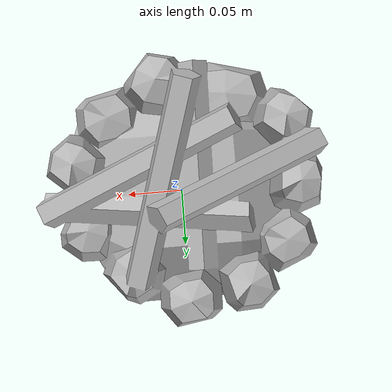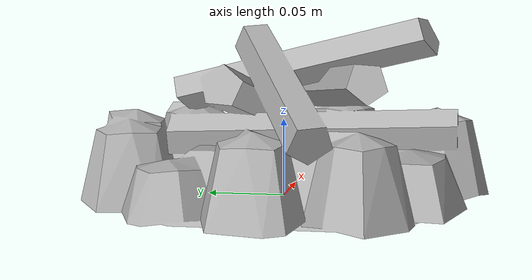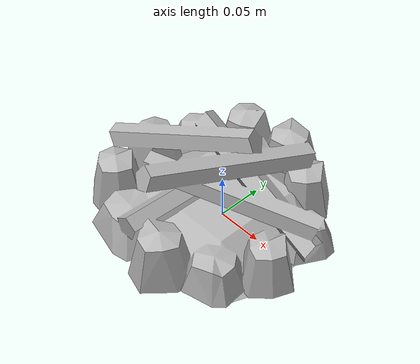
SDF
<?xml version="1.0" ?>
<sdf version="1.0">
  <model name="fire_camp">

    <static>true</static>
    <link name="link">

      <collision name="collision">
        <geometry>
          <mesh>
            <uri>model://fire_camp/meshes/fire_new.dae</uri>
            <scale>0.1 0.1 0.1</scale>
          </mesh>
        </geometry>
      </collision>

      <visual name="visual">
        <geometry>
          <mesh>
            <uri>model://fire_camp/meshes/fire_new.dae</uri>
            <scale>0.1 0.1 0.1</scale>
          </mesh>
        </geometry>
      </visual>

    </link>
  </model>
</sdf>
